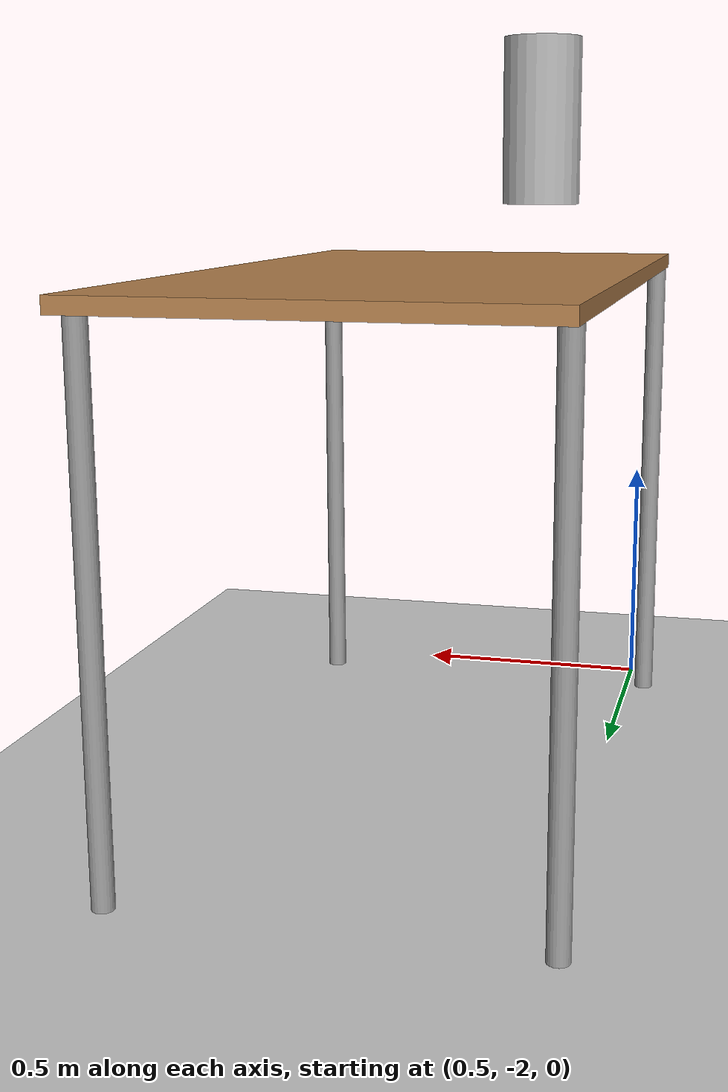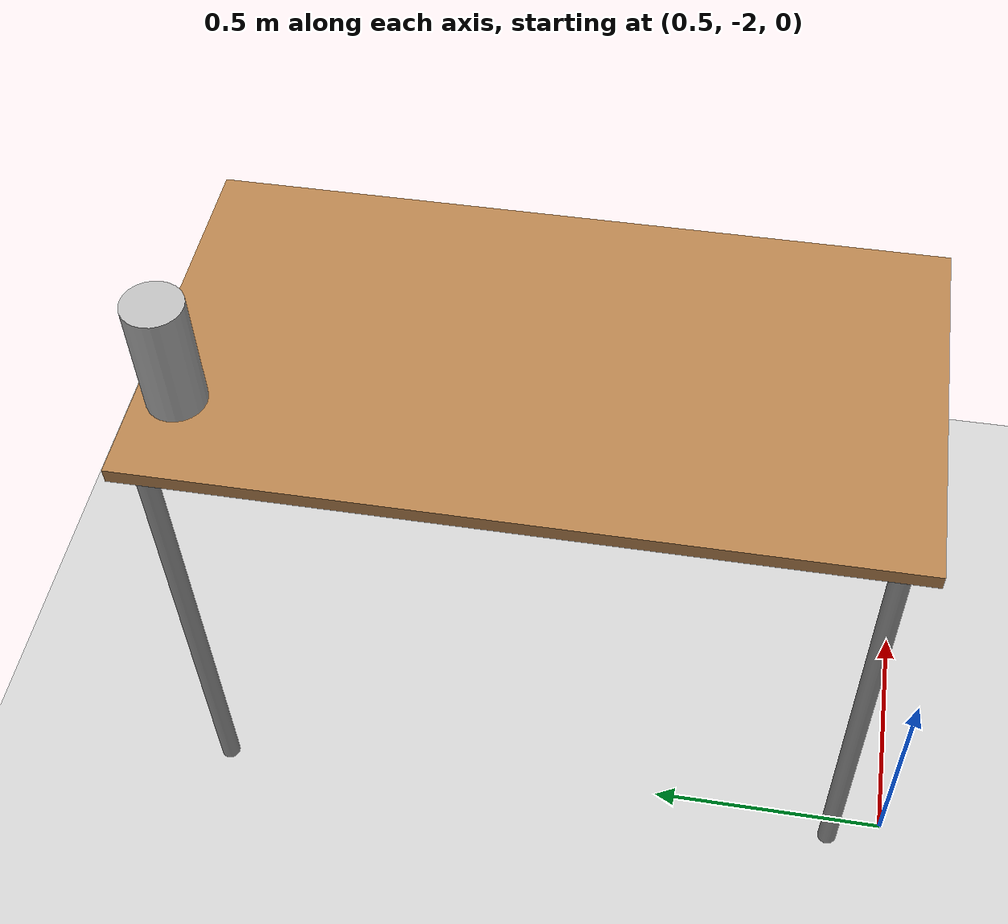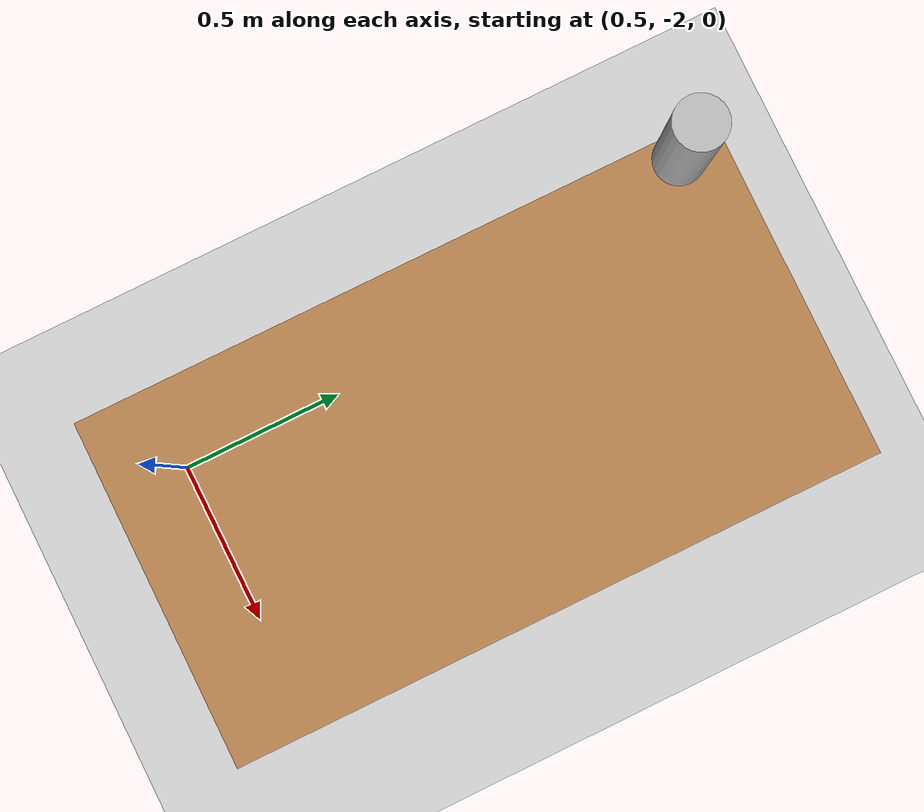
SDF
<sdf version="1.6">
 <world name="default">
  <scene>
   <ambient>0.2 0.2 0.2 1</ambient>
   <background>1 1 1 1</background>
   <shadows>0</shadows>
   <grid>0</grid>
   <origin_visual>0</origin_visual>
  </scene>
  <gravity>0 0 -9.8</gravity>
  <magnetic_field>6e-06 2.3e-05 -4.2e-05</magnetic_field>
  <atmosphere type="adiabatic"/>
  <physics name="dart_2ms" default="1" type="dart">
   <max_step_size>0.002</max_step_size>
   <real_time_factor>1</real_time_factor>
   <real_time_update_rate>500</real_time_update_rate>
  </physics>
  <spherical_coordinates>
   <surface_model>EARTH_WGS84</surface_model>
   <latitude_deg>0</latitude_deg>
   <longitude_deg>0</longitude_deg>
   <elevation>0</elevation>
   <heading_deg>0</heading_deg>
  </spherical_coordinates>
  <model name="ground_plane">
   <static>1</static>
   <link name="link">
    <collision name="collision">
     <geometry><plane><normal>0 0 1</normal><size>100 100</size></plane></geometry>
     <surface><friction><ode><mu>100</mu><mu2>50</mu2></ode></friction></surface>
    </collision>
    <visual name="visual">
     <cast_shadows>0</cast_shadows>
     <geometry><plane><normal>0 0 1</normal><size>100 100</size></plane></geometry>
     <material>
      <script><uri>file://media/materials/scripts/gazebo.material</uri><name>Gazebo/Grey</name></script>
     </material>
    </visual>
   </link>
   <pose>-0.359042 -0.684161 0 0 -0 0</pose>
  </model>
  <light name="user_directional_light_0" type="directional">
   <pose>-1.96434 2.07291 1 0 -0 0</pose>
   <diffuse>0.5 0.5 0.5 1</diffuse>
   <specular>0.1 0.1 0.1 1</specular>
   <direction>0.1 0.1 -0.9</direction>
   <attenuation>
    <range>20</range>
    <constant>0.5</constant>
    <linear>0.01</linear>
    <quadratic>0.001</quadratic>
   </attenuation>
  </light>
  <light name="user_directional_light_1" type="directional">
   <pose>-0.439887 -4.3477 1 0 -0 0</pose>
   <diffuse>0.5 0.5 0.5 1</diffuse>
   <specular>0.1 0.1 0.1 1</specular>
   <direction>0.1 0.1 -0.9</direction>
   <attenuation>
    <range>20</range>
    <constant>0.5</constant>
    <linear>0.01</linear>
    <quadratic>0.001</quadratic>
   </attenuation>
  </light>
  <model name="table">
   <static>1</static>
   <link name="link">
    <collision name="surface">
     <pose>0 0 1 0 -0 0</pose>
     <geometry><box><size>1.5 0.8 0.03</size></box></geometry>
     <surface><friction><ode><mu>0.6</mu><mu2>0.6</mu2></ode></friction></surface>
    </collision>
    <visual name="visual1">
     <pose>0 0 1 0 -0 0</pose>
     <geometry><box><size>1.5 0.8 0.03</size></box></geometry>
     <material>
      <script><uri>file://media/materials/scripts/gazebo.material</uri><name>Gazebo/Wood</name></script>
     </material>
    </visual>
    <collision name="front_left_leg">
     <pose>0.68 0.38 0.5 0 -0 0</pose>
     <geometry><cylinder><radius>0.02</radius><length>1</length></cylinder></geometry>
    </collision>
    <visual name="front_left_leg">
     <pose>0.68 0.38 0.5 0 -0 0</pose>
     <geometry><cylinder><radius>0.02</radius><length>1</length></cylinder></geometry>
     <material>
      <script><uri>file://media/materials/scripts/gazebo.material</uri><name>Gazebo/Grey</name></script>
     </material>
    </visual>
    <collision name="front_right_leg">
     <pose>0.68 -0.38 0.5 0 -0 0</pose>
     <geometry><cylinder><radius>0.02</radius><length>1</length></cylinder></geometry>
    </collision>
    <visual name="front_right_leg">
     <pose>0.68 -0.38 0.5 0 -0 0</pose>
     <geometry><cylinder><radius>0.02</radius><length>1</length></cylinder></geometry>
     <material>
      <script><uri>file://media/materials/scripts/gazebo.material</uri><name>Gazebo/Grey</name></script>
     </material>
    </visual>
    <collision name="back_right_leg">
     <pose>-0.68 -0.38 0.5 0 -0 0</pose>
     <geometry><cylinder><radius>0.02</radius><length>1</length></cylinder></geometry>
    </collision>
    <visual name="back_right_leg">
     <pose>-0.68 -0.38 0.5 0 -0 0</pose>
     <geometry><cylinder><radius>0.02</radius><length>1</length></cylinder></geometry>
     <material>
      <script><uri>file://media/materials/scripts/gazebo.material</uri><name>Gazebo/Grey</name></script>
     </material>
    </visual>
    <collision name="back_left_leg">
     <pose>-0.68 0.38 0.5 0 -0 0</pose>
     <geometry><cylinder><radius>0.02</radius><length>1</length></cylinder></geometry>
    </collision>
    <visual name="back_left_leg">
     <pose>-0.68 0.38 0.5 0 -0 0</pose>
     <geometry><cylinder><radius>0.02</radius><length>1</length></cylinder></geometry>
     <material>
      <script><uri>file://media/materials/scripts/gazebo.material</uri><name>Gazebo/Grey</name></script>
     </material>
    </visual>
   </link>
   <pose>0.84101 -1.20639 0 0 -0 1.56925</pose>
  </model>
  <model name="beer">
   <link name="link">
    <pose>0 0 0.115 0 -0 0</pose>
    <inertial>
     <mass>0.39</mass>
     <inertia><ixx>0.00058</ixx><ixy>0</ixy><ixz>0</ixz><iyy>0.00058</iyy><iyz>0</iyz><izz>0.00019</izz></inertia>
    </inertial>
    <collision name="collision">
     <geometry><cylinder><radius>0.055</radius><length>0.23</length></cylinder></geometry>
    </collision>
    <visual name="visual">
     <geometry><cylinder><radius>0.055</radius><length>0.23</length></cylinder></geometry>
     <material>
      <script>
       <uri>model://beer/materials/scripts</uri>
       <uri>model://beer/materials/textures</uri>
       <name>Beer/Diffuse</name>
      </script>
     </material>
    </visual>
   </link>
   <pose>0.520466 -0.597811 1.14664 0 -0 0</pose>
  </model>
 </world>
</sdf>
